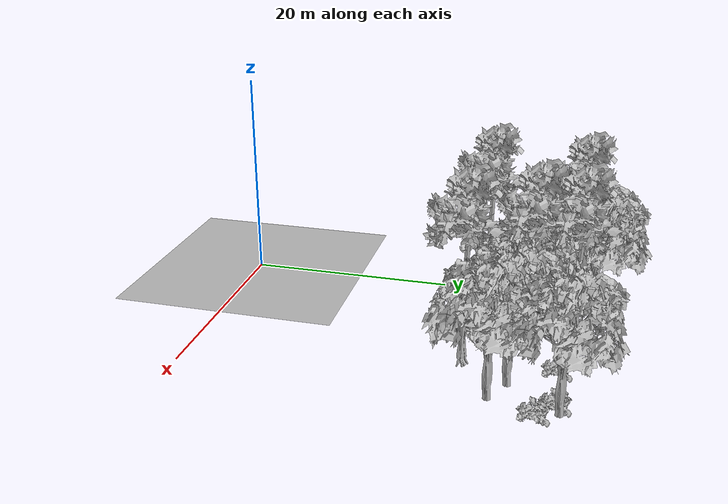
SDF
<sdf version="1.7">
 <world name="default">
  <model name="ground_plane">
   <static>1</static>
   <link name="link">
    <collision name="collision">
     <geometry><plane><normal>0 0 1</normal><size>100 100</size></plane></geometry>
     <surface><contact><ode><min_depth>0.01</min_depth><max_vel>0</max_vel></ode></contact></surface>
    </collision>
    <visual name="grass">
     <cast_shadows>0</cast_shadows>
     <geometry>
      <mesh>
       <scale>0.41000000000000003 0.41000000000000003 0.1</scale>
       <uri>file://grass_plane/meshes/grass_plane.dae</uri>
      </mesh>
     </geometry>
    </visual>
   </link>
  </model>
  <model name="Tree 75">
   <static>1</static>
   <pose>11.155322127881874 32.93951829967364 0 1.57079 -0 0</pose>
   <link name="link">
    <collision name="collision">
     <geometry><mesh><scale>5 5 5</scale><uri>model://tree_9/meshes/tree_9.obj</uri></mesh></geometry>
    </collision>
    <visual name="visual">
     <geometry><mesh><scale>5 5 5</scale><uri>model://tree_9/meshes/tree_9.obj</uri></mesh></geometry>
    </visual>
   </link>
  </model>
  <model name="Tree 80">
   <static>1</static>
   <pose>1.8890909134938099 32.941946965281105 0 1.57079 -0 0</pose>
   <link name="link">
    <collision name="collision">
     <geometry><mesh><scale>5 5 5</scale><uri>model://tree_9/meshes/tree_9.obj</uri></mesh></geometry>
    </collision>
    <visual name="visual">
     <geometry><mesh><scale>5 5 5</scale><uri>model://tree_9/meshes/tree_9.obj</uri></mesh></geometry>
    </visual>
   </link>
  </model>
  <model name="Tree 130">
   <static>1</static>
   <pose>3.1023467129953914 34.66690702815312 0 1.57079 -0 0</pose>
   <link name="link">
    <collision name="collision">
     <geometry><mesh><scale>5 5 5</scale><uri>model://tree_2/meshes/tree_2.obj</uri></mesh></geometry>
    </collision>
    <visual name="visual">
     <geometry><mesh><scale>5 5 5</scale><uri>model://tree_2/meshes/tree_2.obj</uri></mesh></geometry>
    </visual>
   </link>
  </model>
  <model name="Tree 150">
   <static>1</static>
   <pose>20.231310961614867 32.512239698982214 0 1.57079 -0 0</pose>
   <link name="link">
    <collision name="collision">
     <geometry><mesh><scale>5 5 5</scale><uri>model://tree_2/meshes/tree_2.obj</uri></mesh></geometry>
    </collision>
    <visual name="visual">
     <geometry><mesh><scale>5 5 5</scale><uri>model://tree_2/meshes/tree_2.obj</uri></mesh></geometry>
    </visual>
   </link>
  </model>
  <model name="Tree 153">
   <static>1</static>
   <pose>11.004625740407675 29.336698907649435 0 1.57079 -0 0</pose>
   <link name="link">
    <collision name="collision">
     <geometry><mesh><scale>5 5 5</scale><uri>model://tree_9/meshes/tree_9.obj</uri></mesh></geometry>
    </collision>
    <visual name="visual">
     <geometry><mesh><scale>5 5 5</scale><uri>model://tree_9/meshes/tree_9.obj</uri></mesh></geometry>
    </visual>
   </link>
  </model>
  <model name="Tree 178">
   <static>1</static>
   <pose>19.33147383148777 26.760592137192802 0 1.57079 -0 0</pose>
   <link name="link">
    <collision name="collision">
     <geometry><mesh><scale>5 5 5</scale><uri>model://tree_2/meshes/tree_2.obj</uri></mesh></geometry>
    </collision>
    <visual name="visual">
     <geometry><mesh><scale>5 5 5</scale><uri>model://tree_2/meshes/tree_2.obj</uri></mesh></geometry>
    </visual>
   </link>
  </model>
  <model name="Tree 366">
   <static>1</static>
   <pose>-0.2130111601675324 33.888686945930814 0 1.57079 -0 0</pose>
   <link name="link">
    <collision name="collision">
     <geometry><mesh><scale>5 5 5</scale><uri>model://tree_2/meshes/tree_2.obj</uri></mesh></geometry>
    </collision>
    <visual name="visual">
     <geometry><mesh><scale>5 5 5</scale><uri>model://tree_2/meshes/tree_2.obj</uri></mesh></geometry>
    </visual>
   </link>
  </model>
  <model name="Tree 385">
   <static>1</static>
   <pose>8.951131911752405 29.500418325169207 0 1.57079 -0 0</pose>
   <link name="link">
    <collision name="collision">
     <geometry><mesh><scale>5 5 5</scale><uri>model://tree_2/meshes/tree_2.obj</uri></mesh></geometry>
    </collision>
    <visual name="visual">
     <geometry><mesh><scale>5 5 5</scale><uri>model://tree_2/meshes/tree_2.obj</uri></mesh></geometry>
    </visual>
   </link>
  </model>
  <model name="Tree 399">
   <static>1</static>
   <pose>2.645638142882916 31.75627919578858 0 1.57079 -0 0</pose>
   <link name="link">
    <collision name="collision">
     <geometry><mesh><scale>5 5 5</scale><uri>model://tree_2/meshes/tree_2.obj</uri></mesh></geometry>
    </collision>
    <visual name="visual">
     <geometry><mesh><scale>5 5 5</scale><uri>model://tree_2/meshes/tree_2.obj</uri></mesh></geometry>
    </visual>
   </link>
  </model>
  <model name="Tree 441">
   <static>1</static>
   <pose>1.1376527396535039 24.379057961916416 0 1.57079 -0 0</pose>
   <link name="link">
    <collision name="collision">
     <geometry><mesh><scale>5 5 5</scale><uri>model://tree_9/meshes/tree_9.obj</uri></mesh></geometry>
    </collision>
    <visual name="visual">
     <geometry><mesh><scale>5 5 5</scale><uri>model://tree_9/meshes/tree_9.obj</uri></mesh></geometry>
    </visual>
   </link>
  </model>
  <model name="Tree 464">
   <static>1</static>
   <pose>13.587954031372938 23.853753961062992 0 1.57079 -0 0</pose>
   <link name="link">
    <collision name="collision">
     <geometry><mesh><scale>5 5 5</scale><uri>model://tree_9/meshes/tree_9.obj</uri></mesh></geometry>
    </collision>
    <visual name="visual">
     <geometry><mesh><scale>5 5 5</scale><uri>model://tree_9/meshes/tree_9.obj</uri></mesh></geometry>
    </visual>
   </link>
  </model>
  <model name="Tree 468">
   <static>1</static>
   <pose>16.944071503806526 28.102533914071827 0 1.57079 -0 0</pose>
   <link name="link">
    <collision name="collision">
     <geometry><mesh><scale>5 5 5</scale><uri>model://tree_2/meshes/tree_2.obj</uri></mesh></geometry>
    </collision>
    <visual name="visual">
     <geometry><mesh><scale>5 5 5</scale><uri>model://tree_2/meshes/tree_2.obj</uri></mesh></geometry>
    </visual>
   </link>
  </model>
  <model name="Bush 17">
   <static>1</static>
   <pose>8.260602708791033 34.00876891342307 0 1.57079 -0 0</pose>
   <link name="link">
    <collision name="collision">
     <geometry><mesh><scale>2 2 2</scale><uri>model://bush_2/meshes/bush_2.obj</uri></mesh></geometry>
    </collision>
    <visual name="visual">
     <geometry><mesh><scale>5 5 5</scale><uri>model://bush_2/meshes/bush_2.obj</uri></mesh></geometry>
    </visual>
   </link>
  </model>
  <model name="Bush 23">
   <static>1</static>
   <pose>6.857019173460522 30.970662692388956 0 1.57079 -0 0</pose>
   <link name="link">
    <collision name="collision">
     <geometry><mesh><scale>2 2 2</scale><uri>model://bush_2/meshes/bush_2.obj</uri></mesh></geometry>
    </collision>
    <visual name="visual">
     <geometry><mesh><scale>5 5 5</scale><uri>model://bush_2/meshes/bush_2.obj</uri></mesh></geometry>
    </visual>
   </link>
  </model>
  <model name="Bush 38">
   <static>1</static>
   <pose>13.612115848724848 32.006604181379885 0 1.57079 -0 0</pose>
   <link name="link">
    <collision name="collision">
     <geometry><mesh><scale>2 2 2</scale><uri>model://bush_2/meshes/bush_2.obj</uri></mesh></geometry>
    </collision>
    <visual name="visual">
     <geometry><mesh><scale>5 5 5</scale><uri>model://bush_2/meshes/bush_2.obj</uri></mesh></geometry>
    </visual>
   </link>
  </model>
  <model name="Bush 46">
   <static>1</static>
   <pose>18.693354084376267 32.149067484663675 0 1.57079 -0 0</pose>
   <link name="link">
    <collision name="collision">
     <geometry><mesh><scale>2 2 2</scale><uri>model://bush_2/meshes/bush_2.obj</uri></mesh></geometry>
    </collision>
    <visual name="visual">
     <geometry><mesh><scale>5 5 5</scale><uri>model://bush_2/meshes/bush_2.obj</uri></mesh></geometry>
    </visual>
   </link>
  </model>
  <model name="Bush 52">
   <static>1</static>
   <pose>4.745762369745741 31.627843320307875 0 1.57079 -0 0</pose>
   <link name="link">
    <collision name="collision">
     <geometry><mesh><scale>2 2 2</scale><uri>model://bush_2/meshes/bush_2.obj</uri></mesh></geometry>
    </collision>
    <visual name="visual">
     <geometry><mesh><scale>5 5 5</scale><uri>model://bush_2/meshes/bush_2.obj</uri></mesh></geometry>
    </visual>
   </link>
  </model>
  <model name="Bush 53">
   <static>1</static>
   <pose>5.543094787048275 30.108374659718166 0 1.57079 -0 0</pose>
   <link name="link">
    <collision name="collision">
     <geometry><mesh><scale>2 2 2</scale><uri>model://bush_1/meshes/bush_1.obj</uri></mesh></geometry>
    </collision>
    <visual name="visual">
     <geometry><mesh><scale>5 5 5</scale><uri>model://bush_1/meshes/bush_1.obj</uri></mesh></geometry>
    </visual>
   </link>
  </model>
  <model name="Bush 57">
   <static>1</static>
   <pose>1.1365374676404656 33.57094915435492 0 1.57079 -0 0</pose>
   <link name="link">
    <collision name="collision">
     <geometry><mesh><scale>2 2 2</scale><uri>model://bush_2/meshes/bush_2.obj</uri></mesh></geometry>
    </collision>
    <visual name="visual">
     <geometry><mesh><scale>5 5 5</scale><uri>model://bush_2/meshes/bush_2.obj</uri></mesh></geometry>
    </visual>
   </link>
  </model>
  <model name="Bush 61">
   <static>1</static>
   <pose>7.156538163089472 25.534838979664414 0 1.57079 -0 0</pose>
   <link name="link">
    <collision name="collision">
     <geometry><mesh><scale>2 2 2</scale><uri>model://bush_2/meshes/bush_2.obj</uri></mesh></geometry>
    </collision>
    <visual name="visual">
     <geometry><mesh><scale>5 5 5</scale><uri>model://bush_2/meshes/bush_2.obj</uri></mesh></geometry>
    </visual>
   </link>
  </model>
  <model name="Bush 110">
   <static>1</static>
   <pose>20.39558755340431 30.58582992652049 0 1.57079 -0 0</pose>
   <link name="link">
    <collision name="collision">
     <geometry><mesh><scale>2 2 2</scale><uri>model://bush_2/meshes/bush_2.obj</uri></mesh></geometry>
    </collision>
    <visual name="visual">
     <geometry><mesh><scale>5 5 5</scale><uri>model://bush_2/meshes/bush_2.obj</uri></mesh></geometry>
    </visual>
   </link>
  </model>
  <model name="Bush 120">
   <static>1</static>
   <pose>11.548052385564404 24.95956297066614 0 1.57079 -0 0</pose>
   <link name="link">
    <collision name="collision">
     <geometry><mesh><scale>2 2 2</scale><uri>model://bush_1/meshes/bush_1.obj</uri></mesh></geometry>
    </collision>
    <visual name="visual">
     <geometry><mesh><scale>5 5 5</scale><uri>model://bush_1/meshes/bush_1.obj</uri></mesh></geometry>
    </visual>
   </link>
  </model>
 </world>
</sdf>
